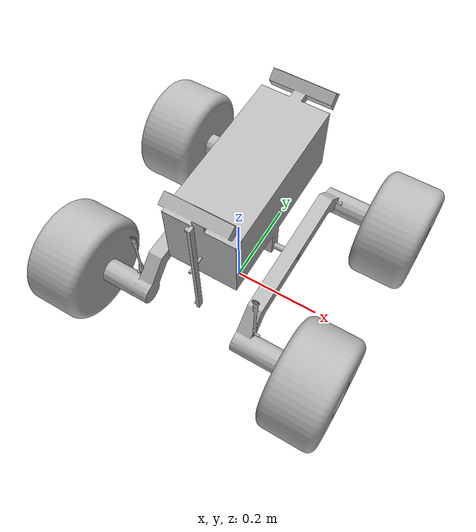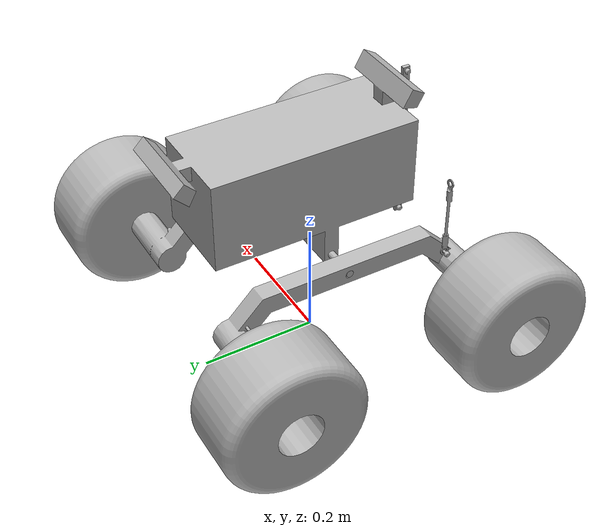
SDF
<?xml version='1.0'?>
<sdf version='1.6'>
  <model name='pathfinder_descriptionCK'>
    <link name='base_link_centered'>
      <pose frame=''>0.01 -0 0.2 0 -0 0</pose>
      <inertial>
        <pose frame=''>0 0 0.2 0 -0 0</pose>
        <mass>5</mass>
        <inertia>
          <ixx>0.084375</ixx>
          <ixy>0</ixy>
          <ixz>0</ixz>
          <iyy>0.016667</iyy>
          <iyz>0</iyz>
          <izz>0.101042</izz>
        </inertia>
      </inertial>
      <self_collide>0</self_collide>
      <kinematic>0</kinematic>
      <gravity>1</gravity>
      <visual name='base_link_centered_visual'>
        <pose frame=''>-0.01 0 0 0 -0 0</pose>
        <geometry>
          <mesh>
            <scale>1 1 1</scale>
            <uri>/home/cagri/fast-traverse-pathfinder_ws/src/pathfinder_description/meshes/base_link_centered.dae</uri>
          </mesh>
        </geometry>
        <cast_shadows>1</cast_shadows>
        <transparency>0</transparency>
        <material>
          <shader type='vertex'>
            <normal_map>__default__</normal_map>
          </shader>
          <emissive>0 0 0 1</emissive>
        </material>
      </visual>
      <collision name='base_link_centered_collision'>
        <laser_retro>0</laser_retro>
        <max_contacts>10</max_contacts>
        <pose frame=''>0 0.06 0.13 0 -0 0</pose>
        <geometry>
          <box>
            <size>0.2 0.45 0.27</size>
          </box>
        </geometry>
        <surface>
          <friction>
            <ode>
              <mu>1</mu>
              <mu2>1</mu2>
              <fdir1>0 0 0</fdir1>
              <slip1>0</slip1>
              <slip2>0</slip2>
            </ode>
            <torsional>
              <coefficient>1</coefficient>
              <patch_radius>0</patch_radius>
              <surface_radius>0</surface_radius>
              <use_patch_radius>1</use_patch_radius>
              <ode>
                <slip>0</slip>
              </ode>
            </torsional>
          </friction>
          <bounce>
            <restitution_coefficient>0</restitution_coefficient>
            <threshold>1e+06</threshold>
          </bounce>
          <contact>
            <collide_without_contact>0</collide_without_contact>
            <collide_without_contact_bitmask>1</collide_without_contact_bitmask>
            <collide_bitmask>1</collide_bitmask>
            <ode>
              <soft_cfm>0</soft_cfm>
              <soft_erp>0.2</soft_erp>
              <kp>1e+13</kp>
              <kd>1</kd>
              <max_vel>0.01</max_vel>
              <min_depth>0</min_depth>
            </ode>
            <bullet>
              <split_impulse>1</split_impulse>
              <split_impulse_penetration_threshold>-0.01</split_impulse_penetration_threshold>
              <soft_cfm>0</soft_cfm>
              <soft_erp>0.2</soft_erp>
              <kp>1e+13</kp>
              <kd>1</kd>
            </bullet>
          </contact>
        </surface>
      </collision>
    </link>
    <link name='back_left_wheel'>
      <pose frame=''>-0.212521 0.20339 0.140291 -1.57101 -0.003006 1.571</pose>
      <inertial>
        <pose frame=''>0 0 0 0 -0 0</pose>
        <mass>0.5</mass>
        <inertia>
          <ixx>0.0024</ixx>
          <ixy>0</ixy>
          <ixz>0</ixz>
          <iyy>0.0024</iyy>
          <iyz>0</iyz>
          <izz>0.0048</izz>
        </inertia>
      </inertial>
      <self_collide>0</self_collide>
      <kinematic>0</kinematic>
      <visual name='back_left_wheel_visual'>
        <pose frame=''>0 0 0.05 0 -0 0</pose>
        <geometry>
          <mesh>
            <scale>1 1 1</scale>
            <uri>/home/cagri/fast-traverse-pathfinder_ws/src/pathfinder_description/meshes/wheel.dae</uri>
          </mesh>
        </geometry>
        <cast_shadows>1</cast_shadows>
        <transparency>0</transparency>
        <material>
          <shader type='vertex'>
            <normal_map>__default__</normal_map>
          </shader>
          <emissive>0 0 0 1</emissive>
        </material>
      </visual>
      <collision name='back_left_wheel_collision'>
        <laser_retro>0</laser_retro>
        <max_contacts>10</max_contacts>
        <pose frame=''>0 0 0.05 0 -0 0</pose>
        <geometry>
          <cylinder>
            <radius>0.12</radius>
            <length>0.12</length>
          </cylinder>
        </geometry>
        <surface>
          <friction>
            <ode>
              <mu>1</mu>
              <mu2>1</mu2>
              <fdir1>0 0 0</fdir1>
              <slip1>0</slip1>
              <slip2>0</slip2>
            </ode>
            <torsional>
              <coefficient>1</coefficient>
              <patch_radius>0</patch_radius>
              <surface_radius>0</surface_radius>
              <use_patch_radius>1</use_patch_radius>
              <ode>
                <slip>0</slip>
              </ode>
            </torsional>
          </friction>
          <bounce>
            <restitution_coefficient>0</restitution_coefficient>
            <threshold>1e+06</threshold>
          </bounce>
          <contact>
            <collide_without_contact>0</collide_without_contact>
            <collide_without_contact_bitmask>1</collide_without_contact_bitmask>
            <collide_bitmask>1</collide_bitmask>
            <ode>
              <soft_cfm>0</soft_cfm>
              <soft_erp>0.2</soft_erp>
              <kp>1e+13</kp>
              <kd>1</kd>
              <max_vel>0.01</max_vel>
              <min_depth>0</min_depth>
            </ode>
            <bullet>
              <split_impulse>1</split_impulse>
              <split_impulse_penetration_threshold>-0.01</split_impulse_penetration_threshold>
              <soft_cfm>0</soft_cfm>
              <soft_erp>0.2</soft_erp>
              <kp>1e+13</kp>
              <kd>1</kd>
            </bullet>
          </contact>
        </surface>
      </collision>
    </link>
    <link name='back_right_wheel'>
      <pose frame=''>0.23094 0.203 0.139069 1.571 0.003006 1.571</pose>
      <inertial>
        <pose frame=''>0 0 0 0 -0 0</pose>
        <mass>0.5</mass>
        <inertia>
          <ixx>0.0024</ixx>
          <ixy>0</ixy>
          <ixz>0</ixz>
          <iyy>0.0024</iyy>
          <iyz>0</iyz>
          <izz>0.0048</izz>
        </inertia>
      </inertial>
      <self_collide>0</self_collide>
      <kinematic>0</kinematic>
      <visual name='back_right_wheel_visual'>
        <pose frame=''>0 0 0.05 0 -0 0</pose>
        <geometry>
          <mesh>
            <scale>1 1 1</scale>
            <uri>/home/cagri/fast-traverse-pathfinder_ws/src/pathfinder_description/meshes/wheel.dae</uri>
          </mesh>
        </geometry>
        <cast_shadows>1</cast_shadows>
        <transparency>0</transparency>
        <material>
          <shader type='vertex'>
            <normal_map>__default__</normal_map>
          </shader>
        </material>
      </visual>
      <collision name='back_right_wheel_collision'>
        <laser_retro>0</laser_retro>
        <max_contacts>10</max_contacts>
        <pose frame=''>0 0 0.05 0 -0 0</pose>
        <geometry>
          <cylinder>
            <radius>0.12</radius>
            <length>0.12</length>
          </cylinder>
        </geometry>
        <surface>
          <friction>
            <ode>
              <mu>1</mu>
              <mu2>1</mu2>
              <fdir1>0 0 0</fdir1>
              <slip1>0</slip1>
              <slip2>0</slip2>
            </ode>
            <torsional>
              <coefficient>1</coefficient>
              <patch_radius>0</patch_radius>
              <surface_radius>0</surface_radius>
              <use_patch_radius>1</use_patch_radius>
              <ode>
                <slip>0</slip>
              </ode>
            </torsional>
          </friction>
          <bounce>
            <restitution_coefficient>0</restitution_coefficient>
            <threshold>1e+06</threshold>
          </bounce>
          <contact>
            <collide_without_contact>0</collide_without_contact>
            <collide_without_contact_bitmask>1</collide_without_contact_bitmask>
            <collide_bitmask>1</collide_bitmask>
            <ode>
              <soft_cfm>0</soft_cfm>
              <soft_erp>0.2</soft_erp>
              <kp>1e+13</kp>
              <kd>1</kd>
              <max_vel>0.01</max_vel>
              <min_depth>0</min_depth>
            </ode>
            <bullet>
              <split_impulse>1</split_impulse>
              <split_impulse_penetration_threshold>-0.01</split_impulse_penetration_threshold>
              <soft_cfm>0</soft_cfm>
              <soft_erp>0.2</soft_erp>
              <kp>1e+13</kp>
              <kd>1</kd>
            </bullet>
          </contact>
        </surface>
      </collision>
    </link>
    <link name='diff_bar'>
      <pose frame=''>0.00978 -0.182 0.30898 -1.57079 -0 -0</pose>
      <inertial>
        <pose frame=''>0 0 0 0 -0 0</pose>
        <mass>0.023261</mass>
        <inertia>
          <ixx>2e-08</ixx>
          <ixy>0</ixy>
          <ixz>0</ixz>
          <iyy>9.81e-06</iyy>
          <iyz>0</iyz>
          <izz>9.79e-06</izz>
        </inertia>
      </inertial>
      <self_collide>0</self_collide>
      <kinematic>0</kinematic>
      <visual name='diff_bar_visual'>
        <pose frame=''>0 0 0 0 -0 0</pose>
        <geometry>
          <mesh>
            <scale>1 1 1</scale>
            <uri>/home/cagri/fast-traverse-pathfinder_ws/src/pathfinder_description/meshes/diff_bar_link.dae</uri>
          </mesh>
        </geometry>
        <cast_shadows>1</cast_shadows>
        <transparency>0</transparency>
        <material>
          <shader type='vertex'>
            <normal_map>__default__</normal_map>
          </shader>
          <emissive>0 0 0 1</emissive>
        </material>
      </visual>
      <collision name='diff_bar_collision'>
        <laser_retro>0</laser_retro>
        <max_contacts>10</max_contacts>
        <pose frame=''>0 0 0 0 -0 0</pose>
        <geometry>
          <box>
            <size>0.3 0.01 0.02</size>
          </box>
        </geometry>
        <surface>
          <friction>
            <ode>
              <mu>1</mu>
              <mu2>1</mu2>
              <fdir1>0 0 0</fdir1>
              <slip1>0</slip1>
              <slip2>0</slip2>
            </ode>
            <torsional>
              <coefficient>1</coefficient>
              <patch_radius>0</patch_radius>
              <surface_radius>0</surface_radius>
              <use_patch_radius>1</use_patch_radius>
              <ode>
                <slip>0</slip>
              </ode>
            </torsional>
          </friction>
          <bounce>
            <restitution_coefficient>0</restitution_coefficient>
            <threshold>1e+06</threshold>
          </bounce>
          <contact>
            <collide_without_contact>0</collide_without_contact>
            <collide_without_contact_bitmask>1</collide_without_contact_bitmask>
            <collide_bitmask>1</collide_bitmask>
            <ode>
              <soft_cfm>0</soft_cfm>
              <soft_erp>0.2</soft_erp>
              <kp>1e+13</kp>
              <kd>1</kd>
              <max_vel>0.01</max_vel>
              <min_depth>0</min_depth>
            </ode>
            <bullet>
              <split_impulse>1</split_impulse>
              <split_impulse_penetration_threshold>-0.01</split_impulse_penetration_threshold>
              <soft_cfm>0</soft_cfm>
              <soft_erp>0.2</soft_erp>
              <kp>1e+13</kp>
              <kd>1</kd>
            </bullet>
          </contact>
        </surface>
      </collision>
    </link>
    <link name='front_left_wheel'>
      <pose frame=''>-0.212519 -0.203 0.139069 -1.57101 -0.003006 1.571</pose>
      <inertial>
        <pose frame=''>0 0 0 0 -0 0</pose>
        <mass>0.5</mass>
        <inertia>
          <ixx>0.0024</ixx>
          <ixy>0</ixy>
          <ixz>0</ixz>
          <iyy>0.0024</iyy>
          <iyz>0</iyz>
          <izz>0.0048</izz>
        </inertia>
      </inertial>
      <self_collide>0</self_collide>
      <kinematic>0</kinematic>
      <visual name='front_left_wheel_visual'>
        <pose frame=''>0 0 0.05 0 -0 0</pose>
        <geometry>
          <mesh>
            <scale>1 1 1</scale>
            <uri>/home/cagri/fast-traverse-pathfinder_ws/src/pathfinder_description/meshes/wheel.dae</uri>
          </mesh>
        </geometry>
        <cast_shadows>1</cast_shadows>
        <transparency>0</transparency>
        <material>
          <shader type='vertex'>
            <normal_map>__default__</normal_map>
          </shader>
          <emissive>0 0 0 1</emissive>
        </material>
      </visual>
      <collision name='front_left_wheel_collision'>
        <laser_retro>0</laser_retro>
        <max_contacts>10</max_contacts>
        <pose frame=''>0 0 0.05 0 -0 0</pose>
        <geometry>
          <cylinder>
            <radius>0.12</radius>
            <length>0.12</length>
          </cylinder>
        </geometry>
        <surface>
          <friction>
            <ode>
              <mu>1</mu>
              <mu2>1</mu2>
              <fdir1>0 0 0</fdir1>
              <slip1>0</slip1>
              <slip2>0</slip2>
            </ode>
            <torsional>
              <coefficient>1</coefficient>
              <patch_radius>0</patch_radius>
              <surface_radius>0</surface_radius>
              <use_patch_radius>1</use_patch_radius>
              <ode>
                <slip>0</slip>
              </ode>
            </torsional>
          </friction>
          <bounce>
            <restitution_coefficient>0</restitution_coefficient>
            <threshold>1e+06</threshold>
          </bounce>
          <contact>
            <collide_without_contact>0</collide_without_contact>
            <collide_without_contact_bitmask>1</collide_without_contact_bitmask>
            <collide_bitmask>1</collide_bitmask>
            <ode>
              <soft_cfm>0</soft_cfm>
              <soft_erp>0.2</soft_erp>
              <kp>1e+13</kp>
              <kd>1</kd>
              <max_vel>0.01</max_vel>
              <min_depth>0</min_depth>
            </ode>
            <bullet>
              <split_impulse>1</split_impulse>
              <split_impulse_penetration_threshold>-0.01</split_impulse_penetration_threshold>
              <soft_cfm>0</soft_cfm>
              <soft_erp>0.2</soft_erp>
              <kp>1e+13</kp>
              <kd>1</kd>
            </bullet>
          </contact>
        </surface>
      </collision>
    </link>
    <link name='front_right_wheel'>
      <pose frame=''>0.23094 -0.20339 0.140291 1.571 0.003006 1.571</pose>
      <inertial>
        <pose frame=''>0 0 0 0 -0 0</pose>
        <mass>0.5</mass>
        <inertia>
          <ixx>0.0024</ixx>
          <ixy>0</ixy>
          <ixz>0</ixz>
          <iyy>0.0024</iyy>
          <iyz>0</iyz>
          <izz>0.0048</izz>
        </inertia>
      </inertial>
      <self_collide>0</self_collide>
      <kinematic>0</kinematic>
      <visual name='front_right_wheel_visual'>
        <pose frame=''>0 0 0.05 0 -0 0</pose>
        <geometry>
          <mesh>
            <scale>1 1 1</scale>
            <uri>/home/cagri/fast-traverse-pathfinder_ws/src/pathfinder_description/meshes/wheel.dae</uri>
          </mesh>
        </geometry>
        <cast_shadows>1</cast_shadows>
        <transparency>0</transparency>
        <material>
          <shader type='vertex'>
            <normal_map>__default__</normal_map>
          </shader>
          <emissive>0 0 0 1</emissive>
        </material>
      </visual>
      <collision name='front_right_wheel_collision'>
        <laser_retro>0</laser_retro>
        <max_contacts>10</max_contacts>
        <pose frame=''>0 0 0.05 0 -0 0</pose>
        <geometry>
          <cylinder>
            <radius>0.12</radius>
            <length>0.12</length>
          </cylinder>
        </geometry>
        <surface>
          <friction>
            <ode>
              <mu>1</mu>
              <mu2>1</mu2>
              <fdir1>0 0 0</fdir1>
              <slip1>0</slip1>
              <slip2>0</slip2>
            </ode>
            <torsional>
              <coefficient>1</coefficient>
              <patch_radius>0</patch_radius>
              <surface_radius>0</surface_radius>
              <use_patch_radius>1</use_patch_radius>
              <ode>
                <slip>0</slip>
              </ode>
            </torsional>
          </friction>
          <bounce>
            <restitution_coefficient>0</restitution_coefficient>
            <threshold>1e+06</threshold>
          </bounce>
          <contact>
            <collide_without_contact>0</collide_without_contact>
            <collide_without_contact_bitmask>1</collide_without_contact_bitmask>
            <collide_bitmask>1</collide_bitmask>
            <ode>
              <soft_cfm>0</soft_cfm>
              <soft_erp>0.2</soft_erp>
              <kp>1e+13</kp>
              <kd>1</kd>
              <max_vel>0.01</max_vel>
              <min_depth>0</min_depth>
            </ode>
            <bullet>
              <split_impulse>1</split_impulse>
              <split_impulse_penetration_threshold>-0.01</split_impulse_penetration_threshold>
              <soft_cfm>0</soft_cfm>
              <soft_erp>0.2</soft_erp>
              <kp>1e+13</kp>
              <kd>1</kd>
            </bullet>
          </contact>
        </surface>
      </collision>
    </link>
    <link name='left_diff_rod'>
      <pose frame=''>0.14321 -0.18197 0.172101 0 -0 0</pose>
      <inertial>
        <pose frame=''>0 0 0 0 -0 0</pose>
        <mass>0.0043059</mass>
        <inertia>
          <ixx>6.02e-06</ixx>
          <ixy>0</ixy>
          <ixz>0</ixz>
          <iyy>6.02e-06</iyy>
          <iyz>0</iyz>
          <izz>0</izz>
        </inertia>
      </inertial>
      <self_collide>0</self_collide>
      <kinematic>0</kinematic>
      <visual name='left_diff_rod_visual'>
        <pose frame=''>0 0 0.07 0 -0 0</pose>
        <geometry>
          <mesh>
            <scale>1 1 1</scale>
            <uri>/home/cagri/fast-traverse-pathfinder_ws/src/pathfinder_description/meshes/diff_rod_link.dae</uri>
          </mesh>
        </geometry>
        <cast_shadows>1</cast_shadows>
        <transparency>0</transparency>
        <material>
          <shader type='vertex'>
            <normal_map>__default__</normal_map>
          </shader>
          <emissive>0 0 0 1</emissive>
        </material>
      </visual>
      <collision name='left_diff_rod_collision'>
        <laser_retro>0</laser_retro>
        <max_contacts>10</max_contacts>
        <pose frame=''>0 0 0.07 0 -0 0</pose>
        <geometry>
          <box>
            <size>0.01 0.01 0.012</size>
          </box>
        </geometry>
        <surface>
          <friction>
            <ode>
              <mu>1</mu>
              <mu2>1</mu2>
              <fdir1>0 0 0</fdir1>
              <slip1>0</slip1>
              <slip2>0</slip2>
            </ode>
            <torsional>
              <coefficient>1</coefficient>
              <patch_radius>0</patch_radius>
              <surface_radius>0</surface_radius>
              <use_patch_radius>1</use_patch_radius>
              <ode>
                <slip>0</slip>
              </ode>
            </torsional>
          </friction>
          <bounce>
            <restitution_coefficient>0</restitution_coefficient>
            <threshold>1e+06</threshold>
          </bounce>
          <contact>
            <collide_without_contact>0</collide_without_contact>
            <collide_without_contact_bitmask>1</collide_without_contact_bitmask>
            <collide_bitmask>1</collide_bitmask>
            <ode>
              <soft_cfm>0</soft_cfm>
              <soft_erp>0.2</soft_erp>
              <kp>1e+13</kp>
              <kd>1</kd>
              <max_vel>0.01</max_vel>
              <min_depth>0</min_depth>
            </ode>
            <bullet>
              <split_impulse>1</split_impulse>
              <split_impulse_penetration_threshold>-0.01</split_impulse_penetration_threshold>
              <soft_cfm>0</soft_cfm>
              <soft_erp>0.2</soft_erp>
              <kp>1e+13</kp>
              <kd>1</kd>
            </bullet>
          </contact>
        </surface>
      </collision>
    </link>
    <link name='left_rocker_centered2'>
      <pose frame=''>0.12598 -0 0.2 1.57079 -0 0</pose>
      <inertial>
        <pose frame=''>0 0 0 0 -0 0</pose>
        <mass>1</mass>
        <inertia>
          <ixx>9.04e-06</ixx>
          <ixy>0</ixy>
          <ixz>2.6e-07</ixz>
          <iyy>9.04e-06</iyy>
          <iyz>1.7e-07</iyz>
          <izz>1e-08</izz>
        </inertia>
      </inertial>
      <self_collide>0</self_collide>
      <kinematic>0</kinematic>
      <visual name='left_rocker_centered2_visual'>
        <pose frame=''>0 0 0 0 -0 0</pose>
        <geometry>
          <mesh>
            <scale>1 1 1</scale>
            <uri>/home/cagri/fast-traverse-pathfinder_ws/src/pathfinder_description/meshes/left_rocker_centered2.dae</uri>
          </mesh>
        </geometry>
        <cast_shadows>1</cast_shadows>
        <transparency>0</transparency>
        <material>
          <shader type='vertex'>
            <normal_map>__default__</normal_map>
          </shader>
          <emissive>0 0 0 1</emissive>
        </material>
      </visual>
      <collision name='left_rocker_centered2_collision'>
        <laser_retro>0</laser_retro>
        <max_contacts>10</max_contacts>
        <pose frame=''>0 0 0 0 -0 0</pose>
        <geometry>
          <box>
            <size>0.2 0.15 0.5</size>
          </box>
        </geometry>
        <surface>
          <friction>
            <ode>
              <mu>1</mu>
              <mu2>1</mu2>
              <fdir1>0 0 0</fdir1>
              <slip1>0</slip1>
              <slip2>0</slip2>
            </ode>
            <torsional>
              <coefficient>1</coefficient>
              <patch_radius>0</patch_radius>
              <surface_radius>0</surface_radius>
              <use_patch_radius>1</use_patch_radius>
              <ode>
                <slip>0</slip>
              </ode>
            </torsional>
          </friction>
          <bounce>
            <restitution_coefficient>0</restitution_coefficient>
            <threshold>1e+06</threshold>
          </bounce>
          <contact>
            <collide_without_contact>0</collide_without_contact>
            <collide_without_contact_bitmask>1</collide_without_contact_bitmask>
            <collide_bitmask>1</collide_bitmask>
            <ode>
              <soft_cfm>0</soft_cfm>
              <soft_erp>0.2</soft_erp>
              <kp>1e+13</kp>
              <kd>1</kd>
              <max_vel>0.01</max_vel>
              <min_depth>0</min_depth>
            </ode>
            <bullet>
              <split_impulse>1</split_impulse>
              <split_impulse_penetration_threshold>-0.01</split_impulse_penetration_threshold>
              <soft_cfm>0</soft_cfm>
              <soft_erp>0.2</soft_erp>
              <kp>1e+13</kp>
              <kd>1</kd>
            </bullet>
          </contact>
        </surface>
      </collision>
    </link>
    <link name='right_diff_rod'>
      <pose frame=''>-0.12321 -0.18197 0.172101 0 -0 0</pose>
      <inertial>
        <pose frame=''>0 0 0 0 -0 0</pose>
        <mass>0.0043059</mass>
        <inertia>
          <ixx>6.02e-06</ixx>
          <ixy>0</ixy>
          <ixz>0</ixz>
          <iyy>6.02e-06</iyy>
          <iyz>0</iyz>
          <izz>0</izz>
        </inertia>
      </inertial>
      <self_collide>0</self_collide>
      <kinematic>0</kinematic>
      <visual name='right_diff_rod_visual'>
        <pose frame=''>0 0 0.07 0 -0 0</pose>
        <geometry>
          <mesh>
            <scale>1 1 1</scale>
            <uri>/home/cagri/fast-traverse-pathfinder_ws/src/pathfinder_description/meshes/diff_rod_link.dae</uri>
          </mesh>
        </geometry>
        <cast_shadows>1</cast_shadows>
        <transparency>0</transparency>
        <material>
          <shader type='vertex'>
            <normal_map>__default__</normal_map>
          </shader>
          <emissive>0 0 0 1</emissive>
        </material>
      </visual>
      <collision name='right_diff_rod_collision'>
        <laser_retro>0</laser_retro>
        <max_contacts>10</max_contacts>
        <pose frame=''>0 0 0.07 0 -0 0</pose>
        <geometry>
          <box>
            <size>0.01 0.01 0.012</size>
          </box>
        </geometry>
        <surface>
          <friction>
            <ode>
              <mu>1</mu>
              <mu2>1</mu2>
              <fdir1>0 0 0</fdir1>
              <slip1>0</slip1>
              <slip2>0</slip2>
            </ode>
            <torsional>
              <coefficient>1</coefficient>
              <patch_radius>0</patch_radius>
              <surface_radius>0</surface_radius>
              <use_patch_radius>1</use_patch_radius>
              <ode>
                <slip>0</slip>
              </ode>
            </torsional>
          </friction>
          <bounce>
            <restitution_coefficient>0</restitution_coefficient>
            <threshold>1e+06</threshold>
          </bounce>
          <contact>
            <collide_without_contact>0</collide_without_contact>
            <collide_without_contact_bitmask>1</collide_without_contact_bitmask>
            <collide_bitmask>1</collide_bitmask>
            <ode>
              <soft_cfm>0</soft_cfm>
              <soft_erp>0.2</soft_erp>
              <kp>1e+13</kp>
              <kd>1</kd>
              <max_vel>0.01</max_vel>
              <min_depth>0</min_depth>
            </ode>
            <bullet>
              <split_impulse>1</split_impulse>
              <split_impulse_penetration_threshold>-0.01</split_impulse_penetration_threshold>
              <soft_cfm>0</soft_cfm>
              <soft_erp>0.2</soft_erp>
              <kp>1e+13</kp>
              <kd>1</kd>
            </bullet>
          </contact>
        </surface>
      </collision>
    </link>
    <link name='right_rocker_centered2'>
      <pose frame=''>-0.10598 -0 0.2 1.57079 -0 -3.14159</pose>
      <inertial>
        <pose frame=''>0 0 0 0 -0 0</pose>
        <mass>1</mass>
        <inertia>
          <ixx>9.04e-06</ixx>
          <ixy>0</ixy>
          <ixz>2.6e-07</ixz>
          <iyy>9.04e-06</iyy>
          <iyz>1.7e-07</iyz>
          <izz>1e-08</izz>
        </inertia>
      </inertial>
      <self_collide>0</self_collide>
      <kinematic>0</kinematic>
      <visual name='right_rocker_centered2_visual'>
        <pose frame=''>0 0 0 0 -0 0</pose>
        <geometry>
          <mesh>
            <scale>1 1 1</scale>
            <uri>/home/cagri/fast-traverse-pathfinder_ws/src/pathfinder_description/meshes/right_rocker_centered2.dae</uri>
          </mesh>
        </geometry>
        <cast_shadows>1</cast_shadows>
        <transparency>0</transparency>
        <material>
          <shader type='vertex'>
            <normal_map>__default__</normal_map>
          </shader>
          <emissive>0 0 0 1</emissive>
        </material>
      </visual>
      <collision name='right_rocker_centered2_collision'>
        <laser_retro>0</laser_retro>
        <max_contacts>10</max_contacts>
        <pose frame=''>0 0 0 0 -0 0</pose>
        <geometry>
          <box>
            <size>0.2 0.15 0.5</size>
          </box>
        </geometry>
        <surface>
          <friction>
            <ode>
              <mu>1</mu>
              <mu2>1</mu2>
              <fdir1>0 0 0</fdir1>
              <slip1>0</slip1>
              <slip2>0</slip2>
            </ode>
            <torsional>
              <coefficient>1</coefficient>
              <patch_radius>0</patch_radius>
              <surface_radius>0</surface_radius>
              <use_patch_radius>1</use_patch_radius>
              <ode>
                <slip>0</slip>
              </ode>
            </torsional>
          </friction>
          <bounce>
            <restitution_coefficient>0</restitution_coefficient>
            <threshold>1e+06</threshold>
          </bounce>
          <contact>
            <collide_without_contact>0</collide_without_contact>
            <collide_without_contact_bitmask>1</collide_without_contact_bitmask>
            <collide_bitmask>1</collide_bitmask>
            <ode>
              <soft_cfm>0</soft_cfm>
              <soft_erp>0.2</soft_erp>
              <kp>1e+13</kp>
              <kd>1</kd>
              <max_vel>0.01</max_vel>
              <min_depth>0</min_depth>
            </ode>
            <bullet>
              <split_impulse>1</split_impulse>
              <split_impulse_penetration_threshold>-0.01</split_impulse_penetration_threshold>
              <soft_cfm>0</soft_cfm>
              <soft_erp>0.2</soft_erp>
              <kp>1e+13</kp>
              <kd>1</kd>
            </bullet>
          </contact>
        </surface>
      </collision>
    </link>
    <joint name='base_to_diff' type='revolute'>
      <parent>base_link_centered</parent>
      <child>diff_bar</child>
      <pose frame=''>0 0 0 0 -0 0</pose>
      <axis>
        <xyz>0 -1 -6e-06</xyz>
        <use_parent_model_frame>1</use_parent_model_frame>
        <limit>
          <lower>-0.79</lower>
          <upper>0.79</upper>
          <effort>0</effort>
          <velocity>0</velocity>
        </limit>
        <dynamics>
          <spring_reference>0</spring_reference>
          <spring_stiffness>0</spring_stiffness>
          <damping>0</damping>
          <friction>0</friction>
        </dynamics>
      </axis>
      <physics>
        <ode>
          <limit>
            <cfm>0</cfm>
            <erp>0.2</erp>
          </limit>
          <suspension>
            <cfm>0</cfm>
            <erp>0.2</erp>
          </suspension>
        </ode>
      </physics>
    </joint>
    <joint name='base_to_left' type='revolute'>
      <parent>base_link_centered</parent>
      <child>left_rocker_centered2</child>
      <pose frame=''>0 0 0 0 -0 0</pose>
      <axis>
        <xyz>-1 0 0</xyz>
        <use_parent_model_frame>1</use_parent_model_frame>
        <limit>
          <lower>-0.28</lower>
          <upper>0.28</upper>
          <effort>0</effort>
          <velocity>0</velocity>
        </limit>
        <dynamics>
          <spring_reference>0</spring_reference>
          <spring_stiffness>0</spring_stiffness>
          <damping>0</damping>
          <friction>0</friction>
        </dynamics>
      </axis>
      <physics>
        <ode>
          <limit>
            <cfm>0</cfm>
            <erp>0.2</erp>
          </limit>
          <suspension>
            <cfm>0</cfm>
            <erp>0.2</erp>
          </suspension>
        </ode>
      </physics>
    </joint>
    <joint name='base_to_right' type='revolute'>
      <parent>base_link_centered</parent>
      <child>right_rocker_centered2</child>
      <pose frame=''>0 0 0 0 -0 0</pose>
      <axis>
        <xyz>1 3e-06 0</xyz>
        <use_parent_model_frame>1</use_parent_model_frame>
        <limit>
          <lower>-0.28</lower>
          <upper>0.28</upper>
          <effort>0</effort>
          <velocity>0</velocity>
        </limit>
        <dynamics>
          <spring_reference>0</spring_reference>
          <spring_stiffness>0</spring_stiffness>
          <damping>0</damping>
          <friction>0</friction>
        </dynamics>
      </axis>
      <physics>
        <ode>
          <limit>
            <cfm>0</cfm>
            <erp>0.2</erp>
          </limit>
          <suspension>
            <cfm>0</cfm>
            <erp>0.2</erp>
          </suspension>
        </ode>
      </physics>
    </joint>
    <joint name='diff_bar_left_rod1' type='revolute'>
      <parent>diff_bar</parent>
      <child>left_diff_rod</child>
      <pose frame=''>0 0 0.136 0 -0 0</pose>
      <axis>
        <xyz>-1 0 0</xyz>
        <use_parent_model_frame>0</use_parent_model_frame>
        <limit>
          <lower>-1.79769e+308</lower>
          <upper>1.79769e+308</upper>
          <effort>-1</effort>
          <velocity>-1</velocity>
        </limit>
        <dynamics>
          <spring_reference>0</spring_reference>
          <spring_stiffness>0</spring_stiffness>
          <damping>5e-07</damping>
          <friction>1e-05</friction>
        </dynamics>
      </axis>
      <physics>
        <ode>
          <limit>
            <cfm>0</cfm>
            <erp>0.2</erp>
          </limit>
          <suspension>
            <cfm>0</cfm>
            <erp>0.2</erp>
          </suspension>
        </ode>
      </physics>
    </joint>
    <joint name='diff_bar_right_rod1' type='revolute'>
      <parent>diff_bar</parent>
      <child>right_diff_rod</child>
      <pose frame=''>0 0 0.136 0 -0 0</pose>
      <axis>
        <xyz>1 0 0</xyz>
        <use_parent_model_frame>0</use_parent_model_frame>
        <limit>
          <lower>-1.79769e+308</lower>
          <upper>1.79769e+308</upper>
          <effort>-1</effort>
          <velocity>-1</velocity>
        </limit>
        <dynamics>
          <spring_reference>0</spring_reference>
          <spring_stiffness>0</spring_stiffness>
          <damping>5e-07</damping>
          <friction>1e-05</friction>
        </dynamics>
      </axis>
      <physics>
        <ode>
          <limit>
            <cfm>0</cfm>
            <erp>0.2</erp>
          </limit>
          <suspension>
            <cfm>0</cfm>
            <erp>0.2</erp>
          </suspension>
        </ode>
      </physics>
    </joint>
    <joint name='left_rod_to_left_rocker' type='revolute'>
      <parent>left_diff_rod</parent>
      <child>left_rocker_centered2</child>
      <pose frame=''>0.018 -0.026 0.183 0 -0 0</pose>
      <axis>
        <xyz>1 0 0</xyz>
        <use_parent_model_frame>0</use_parent_model_frame>
        <limit>
          <lower>-1.79769e+308</lower>
          <upper>1.79769e+308</upper>
          <effort>-1</effort>
          <velocity>-1</velocity>
        </limit>
        <dynamics>
          <spring_reference>0</spring_reference>
          <spring_stiffness>0</spring_stiffness>
          <damping>5e-07</damping>
          <friction>1e-05</friction>
        </dynamics>
      </axis>
      <physics>
        <ode>
          <limit>
            <cfm>0</cfm>
            <erp>0.2</erp>
          </limit>
          <suspension>
            <cfm>0</cfm>
            <erp>0.2</erp>
          </suspension>
        </ode>
      </physics>
    </joint>
    <joint name='left_to_back_left' type='revolute'>
      <parent>right_rocker_centered2</parent>
      <child>back_left_wheel</child>
      <pose frame=''>0 0 0 0 -0 0</pose>
      <axis>
        <xyz>-1 -4e-06 -1.2e-05</xyz>
        <use_parent_model_frame>1</use_parent_model_frame>
        <limit>
          <lower>-1e+16</lower>
          <upper>1e+16</upper>
          <effort>-1</effort>
          <velocity>-1</velocity>
        </limit>
        <dynamics>
          <spring_reference>0</spring_reference>
          <spring_stiffness>0</spring_stiffness>
          <damping>0</damping>
          <friction>0</friction>
        </dynamics>
      </axis>
      <physics>
        <ode>
          <limit>
            <cfm>0</cfm>
            <erp>0.2</erp>
          </limit>
          <suspension>
            <cfm>0</cfm>
            <erp>0.2</erp>
          </suspension>
        </ode>
      </physics>
    </joint>
    <joint name='left_to_front_left' type='revolute'>
      <parent>right_rocker_centered2</parent>
      <child>front_left_wheel</child>
      <pose frame=''>0 0 0 0 -0 0</pose>
      <axis>
        <xyz>-1 -4e-06 -1.2e-05</xyz>
        <use_parent_model_frame>1</use_parent_model_frame>
        <limit>
          <lower>-1e+16</lower>
          <upper>1e+16</upper>
          <effort>-1</effort>
          <velocity>-1</velocity>
        </limit>
        <dynamics>
          <spring_reference>0</spring_reference>
          <spring_stiffness>0</spring_stiffness>
          <damping>0</damping>
          <friction>0</friction>
        </dynamics>
      </axis>
      <physics>
        <ode>
          <limit>
            <cfm>0</cfm>
            <erp>0.2</erp>
          </limit>
          <suspension>
            <cfm>0</cfm>
            <erp>0.2</erp>
          </suspension>
        </ode>
      </physics>
    </joint>
    <joint name='right_rod_to_right_rocker' type='revolute'>
      <parent>right_diff_rod</parent>
      <child>right_rocker_centered2</child>
      <pose frame=''>0.018 -0.026 -0.183 0 -0 0</pose>
      <axis>
        <xyz>1 0 0</xyz>
        <use_parent_model_frame>0</use_parent_model_frame>
        <limit>
          <lower>-1.79769e+308</lower>
          <upper>1.79769e+308</upper>
          <effort>-1</effort>
          <velocity>-1</velocity>
        </limit>
        <dynamics>
          <spring_reference>0</spring_reference>
          <spring_stiffness>0</spring_stiffness>
          <damping>-0.0099995</damping>
          <friction>1e-05</friction>
        </dynamics>
      </axis>
      <physics>
        <ode>
          <limit>
            <cfm>0</cfm>
            <erp>0.2</erp>
          </limit>
          <suspension>
            <cfm>0</cfm>
            <erp>0.2</erp>
          </suspension>
        </ode>
      </physics>
    </joint>
    <joint name='right_to_back_right' type='revolute'>
      <parent>left_rocker_centered2</parent>
      <child>back_right_wheel</child>
      <pose frame=''>0 0 0 0 -0 0</pose>
      <axis>
        <xyz>1 1.4e-05 0</xyz>
        <use_parent_model_frame>1</use_parent_model_frame>
        <limit>
          <lower>-1e+16</lower>
          <upper>1e+16</upper>
          <effort>-1</effort>
          <velocity>-1</velocity>
        </limit>
        <dynamics>
          <spring_reference>0</spring_reference>
          <spring_stiffness>0</spring_stiffness>
          <damping>0</damping>
          <friction>0</friction>
        </dynamics>
      </axis>
      <physics>
        <ode>
          <limit>
            <cfm>0</cfm>
            <erp>0.2</erp>
          </limit>
          <suspension>
            <cfm>0</cfm>
            <erp>0.2</erp>
          </suspension>
        </ode>
      </physics>
    </joint>
    <joint name='right_to_front_right' type='revolute'>
      <parent>left_rocker_centered2</parent>
      <child>front_right_wheel</child>
      <pose frame=''>0 0 0 0 -0 0</pose>
      <axis>
        <xyz>1 1.4e-05 -1e-05</xyz>
        <use_parent_model_frame>1</use_parent_model_frame>
        <limit>
          <lower>-1e+16</lower>
          <upper>1e+16</upper>
          <effort>-1</effort>
          <velocity>-1</velocity>
        </limit>
        <dynamics>
          <spring_reference>0</spring_reference>
          <spring_stiffness>0</spring_stiffness>
          <damping>0</damping>
          <friction>0</friction>
        </dynamics>
      </axis>
      <physics>
        <ode>
          <limit>
            <cfm>0</cfm>
            <erp>0.2</erp>
          </limit>
          <suspension>
            <cfm>0</cfm>
            <erp>0.2</erp>
          </suspension>
        </ode>
      </physics>
    </joint>
    <static>0</static>
    <allow_auto_disable>1</allow_auto_disable>
  </model>
</sdf>
